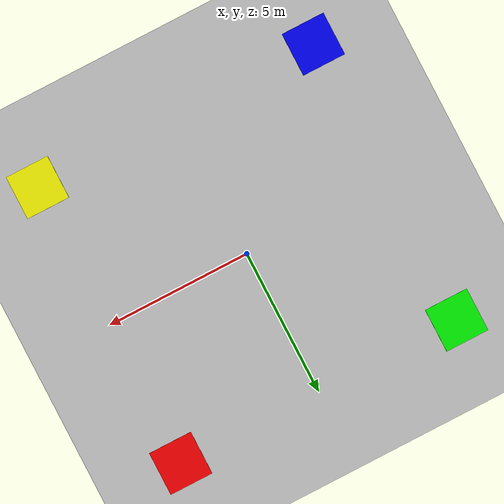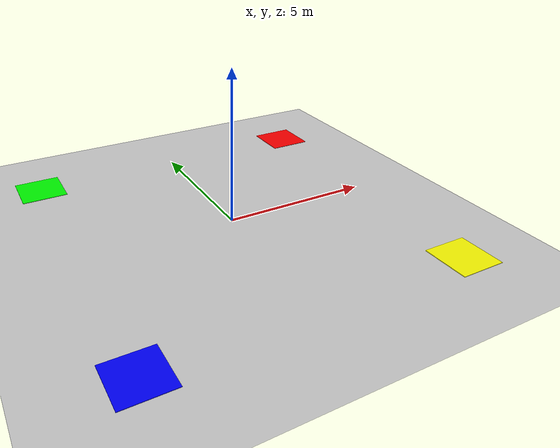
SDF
<?xml version="1.0"?>
<sdf version="1.7">
  <world name="color_goals_world">

    <!-- Physics -->
    <physics name="ode_physics" type="ode">
      <real_time_update_rate>1000.0</real_time_update_rate>
      <max_step_size>0.001</max_step_size>
      <real_time_factor>1.0</real_time_factor>
      <ode>
        <solver>
          <type>quick</type>
          <iters>150</iters>
          <precon_iters>0</precon_iters>
          <sor>1.4</sor>
          <use_dynamic_moi_rescaling>1</use_dynamic_moi_rescaling>
        </solver>
        <constraints>
          <cfm>0.00001</cfm>
          <erp>0.2</erp>
          <contact_max_correcting_vel>2000.0</contact_max_correcting_vel>
          <contact_surface_layer>0.01</contact_surface_layer>
        </constraints>
      </ode>
    </physics>

    <!-- Plugins -->
    <plugin filename="gz-sim-physics-system" name="gz::sim::systems::Physics"/>
    <plugin filename="gz-sim-user-commands-system" name="gz::sim::systems::UserCommands"/>
    <plugin filename="gz-sim-scene-broadcaster-system" name="gz::sim::systems::SceneBroadcaster"/>
    <plugin filename="gz-sim-sensors-system" name="gz::sim::systems::Sensors">
      <render_engine>ogre2</render_engine>
    </plugin>
    <plugin filename="gz-sim-imu-system" name="gz::sim::systems::Imu"/>

    <!-- Ground plane -->
    <include>
      <uri>https://fuel.gazebosim.org/1.0/OpenRobotics/models/Ground Plane</uri>
    </include>

    <!-- Sun -->
    <include>
      <uri>https://fuel.gazebosim.org/1.0/OpenRobotics/models/Sun</uri>
    </include>

    <!-- Goals -->
    <include>
      <uri>model://red_goal</uri>
      <pose>5 5 0 0 0 0</pose>
    </include>
    <include>
      <uri>model://green_goal</uri>
      <pose>-5 5 0 0 0 0</pose>
    </include>
    <include>
      <uri>model://blue_goal</uri>
      <pose>-5 -5 0 0 0 0</pose>
    </include>
    <include>
      <uri>model://yellow_goal</uri>
      <pose>5 -5 0 0 0 0</pose>
    </include>

    <!-- GUI Camera -->
    <gui fullscreen='0'>
      <camera name='user_camera'>
        <pose frame=''>0 0 10 0 -1.57 0</pose>
        <view_controller>orbit</view_controller>
        <projection_type>perspective</projection_type>
      </camera>
    </gui>

  </world>
</sdf>

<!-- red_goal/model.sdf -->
<sdf version="1.7">
  <model name="red_goal">
    <static>true</static>
    <link name="link">
      <pose>0 0 0.01 0 0 0</pose>
      <collision name="collision">
        <geometry>
          <box>
            <size>1.5 1.5 0.02</size>
          </box>
        </geometry>
      </collision>
      <visual name="visual">
        <geometry>
          <box>
            <size>1.5 1.5 0.02</size>
          </box>
        </geometry>
        <material>
          <ambient>1 0 0 1</ambient>
          <diffuse>1 0 0 1</diffuse>
          <specular>0.1 0.1 0.1 1</specular>
        </material>
      </visual>
    </link>
  </model>
</sdf>

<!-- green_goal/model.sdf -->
<sdf version="1.7">
  <model name="green_goal">
    <static>true</static>
    <link name="link">
      <pose>0 0 0.01 0 0 0</pose>
      <collision name="collision">
        <geometry>
          <box>
            <size>1.5 1.5 0.02</size>
          </box>
        </geometry>
      </collision>
      <visual name="visual">
        <geometry>
          <box>
            <size>1.5 1.5 0.02</size>
          </box>
        </geometry>
        <material>
          <ambient>0 1 0 1</ambient>
          <diffuse>0 1 0 1</diffuse>
          <specular>0.1 0.1 0.1 1</specular>
        </material>
      </visual>
    </link>
  </model>
</sdf>

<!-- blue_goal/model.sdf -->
<sdf version="1.7">
  <model name="blue_goal">
    <static>true</static>
    <link name="link">
      <pose>0 0 0.01 0 0 0</pose>
      <collision name="collision">
        <geometry>
          <box>
            <size>1.5 1.5 0.02</size>
          </box>
        </geometry>
      </collision>
      <visual name="visual">
        <geometry>
          <box>
            <size>1.5 1.5 0.02</size>
          </box>
        </geometry>
        <material>
          <ambient>0 0 1 1</ambient>
          <diffuse>0 0 1 1</diffuse>
          <specular>0.1 0.1 0.1 1</specular>
        </material>
      </visual>
    </link>
  </model>
</sdf>

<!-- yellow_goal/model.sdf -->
<sdf version="1.7">
  <model name="yellow_goal">
    <static>true</static>
    <link name="link">
      <pose>0 0 0.01 0 0 0</pose>
      <collision name="collision">
        <geometry>
          <box>
            <size>1.5 1.5 0.02</size>
          </box>
        </geometry>
      </collision>
      <visual name="visual">
        <geometry>
          <box>
            <size>1.5 1.5 0.02</size>
          </box>
        </geometry>
        <material>
          <ambient>1 1 0 1</ambient>
          <diffuse>1 1 0 1</diffuse>
          <specular>0.1 0.1 0.1 1</specular>
        </material>
      </visual>
    </link>
  </model>
</sdf>
